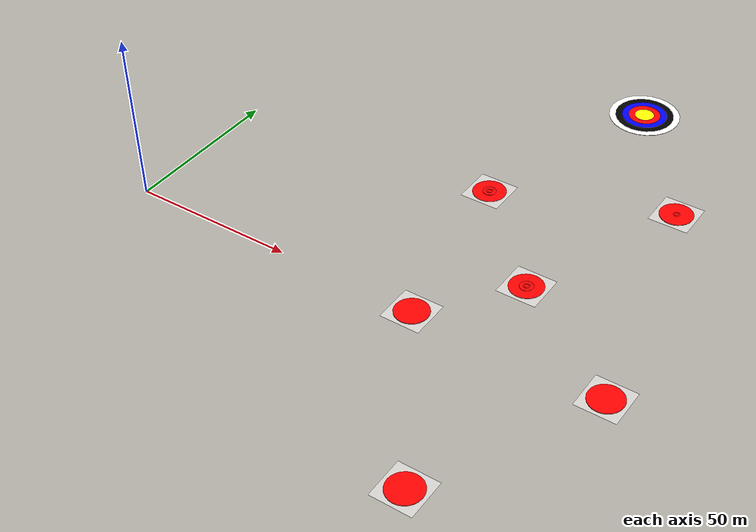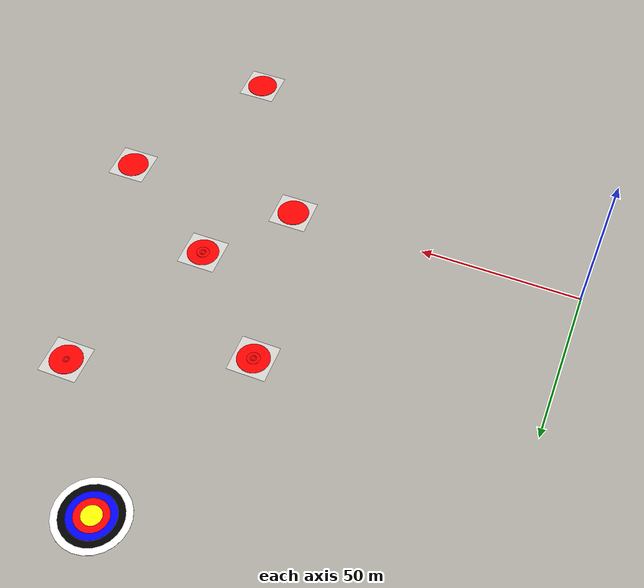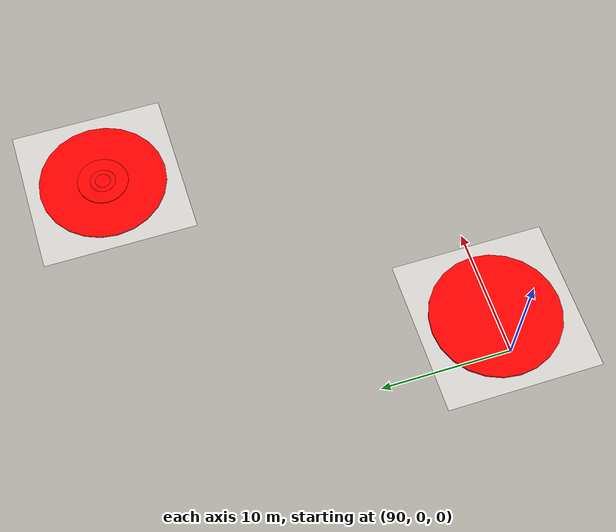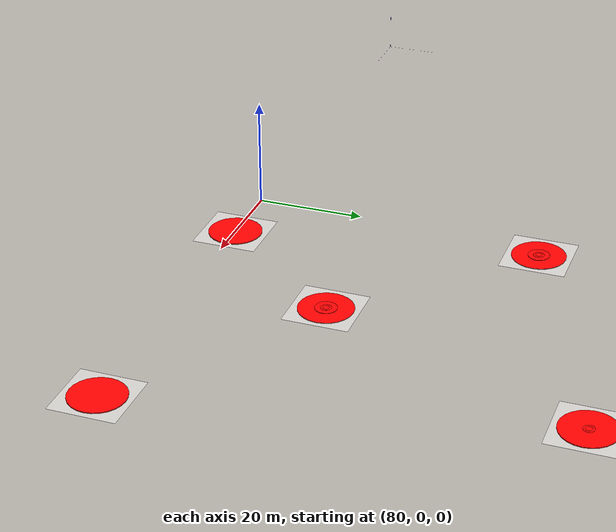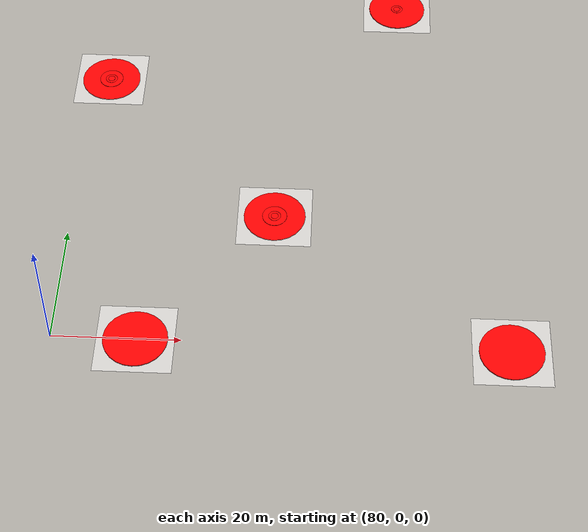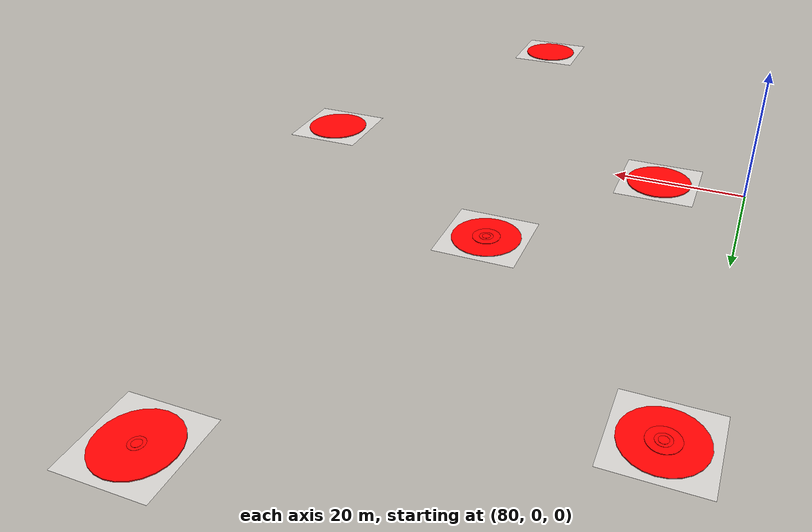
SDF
<sdf version="1.10">
 <world name="iris_runway">
  <physics name="1ms" type="ignore">
   <max_step_size>0.001</max_step_size>
   <real_time_factor>1</real_time_factor>
   <real_time_update_rate>1000</real_time_update_rate>
  </physics>
  <plugin name="gz::sim::systems::Physics" filename="gz-sim-physics-system"/>
  <plugin name="gz::sim::systems::Sensors" filename="gz-sim-sensors-system">
   <render_engine>ogre2</render_engine>
  </plugin>
  <plugin name="gz::sim::systems::UserCommands" filename="gz-sim-user-commands-system"/>
  <plugin name="gz::sim::systems::SceneBroadcaster" filename="gz-sim-scene-broadcaster-system"/>
  <plugin name="gz::sim::systems::Imu" filename="gz-sim-imu-system"/>
  <plugin name="gz::sim::systems::NavSat" filename="gz-sim-navsat-system"/>
  <scene>
   <ambient>1 1 1 1</ambient>
   <background>0.800000012 0.800000012 0.800000012 1</background>
   <shadows>true</shadows>
  </scene>
  <spherical_coordinates>
   <latitude_deg>-35.363261999999999</latitude_deg>
   <longitude_deg>149.16523699999999</longitude_deg>
   <elevation>584</elevation>
   <heading_deg>0</heading_deg>
   <surface_model>EARTH_WGS84</surface_model>
  </spherical_coordinates>
  <gravity>0 0 -9.8000000000000007</gravity>
  <magnetic_field>5.5644999999999998e-06 2.2875799999999999e-05 -4.2388400000000002e-05</magnetic_field>
  <atmosphere type="adiabatic"/>
  <model name="helipad">
   <link name="background_link">
    <collision name="background_collision">
     <geometry><cylinder><radius>4</radius><length>0.11</length></cylinder></geometry>
    </collision>
    <visual name="background_visual_H1">
     <geometry><cylinder><radius>3.7</radius><length>0.1</length></cylinder></geometry>
     <material>
      <ambient>1 0 0 1</ambient>
      <diffuse>1 0 0 1</diffuse>
      <specular>0 0 0 1</specular>
      <emissive>0 0 0 0</emissive>
     </material>
     <pose>93 0 0 0 0 0</pose>
    </visual>
   </link>
   <link name="h_letter">
    <collision name="h_letter_collision">
     <geometry><cylinder><radius>3</radius><length>0.12</length></cylinder></geometry>
    </collision>
    <visual name="h_letter_visual_11">
     <geometry><cylinder><radius>3</radius><length>0.12</length></cylinder></geometry>
     <material>
      <ambient>1 0 0 1</ambient>
      <diffuse>1 0 0 1</diffuse>
      <specular>0 0 0 1</specular>
      <emissive>0 0 0 0</emissive>
     </material>
     <pose>93 0 0 0 0 0</pose>
    </visual>
    <visual name="h_letter_visual_12">
     <geometry><cylinder><radius>2</radius><length>0.15</length></cylinder></geometry>
     <material>
      <ambient>1 0 0 1</ambient>
      <diffuse>1 0 0 1</diffuse>
      <specular>0 0 0 1</specular>
      <emissive>0 0 0 0</emissive>
     </material>
     <pose>93 0 0 0 0 0</pose>
    </visual>
    <visual name="h_letter_visual_13">
     <geometry><cylinder><radius>1</radius><length>0.15</length></cylinder></geometry>
     <material>
      <ambient>1 0 0 1</ambient>
      <diffuse>1 0 0 1</diffuse>
      <specular>0 0 0 1</specular>
      <emissive>0 0 0 0</emissive>
     </material>
     <pose>93 0 0.05 0 0 0</pose>
    </visual>
    <visual name="h_letter_visual_14">
     <geometry><cylinder><radius>5</radius><length>0.17</length></cylinder></geometry>
     <material>
      <ambient>1 0 0 1</ambient>
      <diffuse>1 0 0 1</diffuse>
      <specular>0 0 0 1</specular>
      <emissive>0 0 0 0</emissive>
     </material>
     <pose>93 0 0.05 0 0 0</pose>
    </visual>
    <visual name="white_box1">
     <geometry><box><size>12 12 0.001</size></box></geometry>
     <material>
      <ambient>1 1 1 0.5</ambient>
      <diffuse>1 1 1 0.5</diffuse>
      <specular>1 1 1 0.5</specular>
      <emissive>1 1 1 0</emissive>
     </material>
     <pose>93 0 0.001 0 0 0</pose>
    </visual>
    <visual name="h_letter_visual_69">
     <geometry><cylinder><radius>3.7</radius><length>0.1</length></cylinder></geometry>
     <material>
      <ambient>1 0 0 1</ambient>
      <diffuse>1 0 0 1</diffuse>
      <specular>0 0 0 0</specular>
      <emissive>0 0 0 0</emissive>
     </material>
     <pose>113 25 0 0 0 0</pose>
    </visual>
    <visual name="h_letter_visual_79">
     <geometry><cylinder><radius>3.7</radius><length>0.1</length></cylinder></geometry>
     <material>
      <ambient>1 0 0 1</ambient>
      <diffuse>1 0 0 1</diffuse>
      <specular>0 0 0 1</specular>
      <emissive>0 0 0 0</emissive>
     </material>
     <pose>83 55 0 0 0 0</pose>
    </visual>
    <visual name="h_letter_visual_76">
     <geometry><cylinder><radius>3.7</radius><length>0.1</length></cylinder></geometry>
     <material>
      <ambient>1 0 0 1</ambient>
      <diffuse>1 0 0 1</diffuse>
      <specular>0 0 0 1</specular>
      <emissive>0 0 0 0</emissive>
     </material>
     <pose>133 75 0 0 0 0</pose>
    </visual>
    <visual name="h_letter_visual_78">
     <geometry><cylinder><radius>5</radius><length>0.12</length></cylinder></geometry>
     <material>
      <ambient>1 0 0 1</ambient>
      <diffuse>1 0 0 1</diffuse>
      <specular>0 0 0 1</specular>
      <emissive>0 0 0 0</emissive>
     </material>
     <pose>113 25 0 0 0 0</pose>
    </visual>
    <visual name="white_box2">
     <geometry><box><size>12 12 0.001</size></box></geometry>
     <material>
      <ambient>1 1 1 0.5</ambient>
      <diffuse>1 1 1 0.5</diffuse>
      <specular>1 1 1 0.5</specular>
      <emissive>1 1 1 0</emissive>
     </material>
     <pose>113 25 0.001 0 0 0</pose>
    </visual>
    <visual name="h_letter_visual_98">
     <geometry><cylinder><radius>5</radius><length>0.12</length></cylinder></geometry>
     <material>
      <ambient>1 0 0 1</ambient>
      <diffuse>1 0 0 1</diffuse>
      <specular>0 0 0 1</specular>
      <emissive>0 0 0 0</emissive>
     </material>
     <pose>83 55 0 0 0 0</pose>
    </visual>
    <visual name="white_box3">
     <geometry><box><size>12 12 0.001</size></box></geometry>
     <material>
      <ambient>1 1 1 0.5</ambient>
      <diffuse>1 1 1 0.5</diffuse>
      <specular>1 1 1 0.5</specular>
      <emissive>1 1 1 0</emissive>
     </material>
     <pose>83 55 0.001 0 0 0</pose>
    </visual>
    <visual name="h_letter_visual_68">
     <geometry><cylinder><radius>3</radius><length>0.12</length></cylinder></geometry>
     <material>
      <ambient>1 0 0 1</ambient>
      <diffuse>1 0 0 1</diffuse>
      <specular>0 0 0 1</specular>
      <emissive>0 0 0 0</emissive>
     </material>
     <pose>133 75 0 0 0 0</pose>
    </visual>
    <visual name="h_letter_visual_45">
     <geometry><cylinder><radius>2</radius><length>0.15</length></cylinder></geometry>
     <material>
      <ambient>1 0 0 1</ambient>
      <diffuse>1 0 0 1</diffuse>
      <specular>0 0 0 1</specular>
      <emissive>0 0 0 0</emissive>
     </material>
     <pose>113 25 0.05 0 0 0</pose>
    </visual>
    <visual name="h_letter_visual_46">
     <geometry><cylinder><radius>2</radius><length>0.15</length></cylinder></geometry>
     <material>
      <ambient>1 0 0 1</ambient>
      <diffuse>1 0 0 1</diffuse>
      <specular>0 0 0 1</specular>
      <emissive>0 0 0 0</emissive>
     </material>
     <pose>83 55 0.05 0 0 0</pose>
    </visual>
    <visual name="h_letter_visual_35">
     <geometry><cylinder><radius>5</radius><length>0.15</length></cylinder></geometry>
     <material>
      <ambient>1 0 0 1</ambient>
      <diffuse>1 0 0 1</diffuse>
      <specular>0 0 0 1</specular>
      <emissive>0 0 0 0</emissive>
     </material>
     <pose>133 75 0.05 0 0 0</pose>
    </visual>
    <visual name="white_box4">
     <geometry><box><size>12 12 0.001</size></box></geometry>
     <material>
      <ambient>1 1 1 0.5</ambient>
      <diffuse>1 1 1 0.5</diffuse>
      <specular>1 1 1 0.5</specular>
      <emissive>1 1 1 0</emissive>
     </material>
     <pose>133 75 0.001 0 0 0</pose>
    </visual>
    <visual name="h_letter_visual_56">
     <geometry><cylinder><radius>1</radius><length>0.17</length></cylinder></geometry>
     <material>
      <ambient>1 0 0 1</ambient>
      <diffuse>1 0 0 1</diffuse>
      <specular>0 0 0 1</specular>
      <emissive>0 0 0 0</emissive>
     </material>
     <pose>113 25 0.05 0 0 0</pose>
    </visual>
    <visual name="h_letter_visual_16">
     <geometry><cylinder><radius>1</radius><length>0.17</length></cylinder></geometry>
     <material>
      <ambient>1 0 0 1</ambient>
      <diffuse>1 0 0 1</diffuse>
      <specular>0 0 0 1</specular>
      <emissive>0 0 0 0</emissive>
     </material>
     <pose>83 55 0.05 0 0 0</pose>
    </visual>
    <visual name="h_letter_visual_66">
     <geometry><cylinder><radius>1</radius><length>0.17</length></cylinder></geometry>
     <material>
      <ambient>1 0 0 1</ambient>
      <diffuse>1 0 0 1</diffuse>
      <specular>0 0 0 1</specular>
      <emissive>0 0 0 0</emissive>
     </material>
     <pose>133 75 0.05 0 0 0</pose>
    </visual>
    <visual name="h_letter_visual_23">
     <geometry><cylinder><radius>0.6</radius><length>0.19</length></cylinder></geometry>
     <material>
      <ambient>1 0 0 1</ambient>
      <diffuse>1 0 0 1</diffuse>
      <specular>0 0 0 1</specular>
      <emissive>0 0 0 0</emissive>
     </material>
     <pose>113 25 0.05 0 0 0</pose>
    </visual>
    <visual name="h_letter_visual_19">
     <geometry><cylinder><radius>0.6</radius><length>0.19</length></cylinder></geometry>
     <material>
      <ambient>1 0 0 1</ambient>
      <diffuse>1 0 0 1</diffuse>
      <specular>0 0 0 1</specular>
      <emissive>0 0 0 0</emissive>
     </material>
     <pose>133 75 0.05 0 0 0</pose>
    </visual>
    <visual name="h_letter_visual_73">
     <geometry><cylinder><radius>0.6</radius><length>0.19</length></cylinder></geometry>
     <material>
      <ambient>1 0 0 1</ambient>
      <diffuse>1 0 0 1</diffuse>
      <specular>0 0 0 1</specular>
      <emissive>0 0 0 0</emissive>
     </material>
     <pose>83 55 0.05 0 0 0</pose>
    </visual>
    <visual name="h_letter_visual_113">
     <geometry><cylinder><radius>3</radius><length>0.19</length></cylinder></geometry>
     <material>
      <ambient>1 1 0 1</ambient>
      <diffuse>1 1 0 1</diffuse>
      <specular>1 1 0 1</specular>
      <emissive>1 1 0 0</emissive>
     </material>
     <pose>103 115 0.05 0 0 0</pose>
    </visual>
    <visual name="h_letter_visual_146">
     <geometry><cylinder><radius>5</radius><length>0.17</length></cylinder></geometry>
     <material>
      <ambient>1 0 0 1</ambient>
      <diffuse>1 0 0 1</diffuse>
      <specular>1 0 0 1</specular>
      <emissive>1 0 0 0</emissive>
     </material>
     <pose>103 115 0.05 0 0 0</pose>
    </visual>
    <visual name="h_letter_visual_65">
     <geometry><cylinder><radius>7</radius><length>0.15</length></cylinder></geometry>
     <material>
      <ambient>0 0 1 1</ambient>
      <diffuse>0 0 1 1</diffuse>
      <specular>0 0 1 1</specular>
      <emissive>0 0 1 0</emissive>
     </material>
     <pose>103 115 0.05 0 0 0</pose>
    </visual>
    <visual name="h_letter_visual_18">
     <geometry><cylinder><radius>9</radius><length>0.12</length></cylinder></geometry>
     <material>
      <ambient>0 0 0 1</ambient>
      <diffuse>0 0 0 1</diffuse>
      <specular>0 0 0 1</specular>
      <emissive>0 0 0 0</emissive>
     </material>
     <pose>103 115 0 0 0 0</pose>
    </visual>
    <visual name="h_letter_visual_71">
     <geometry><cylinder><radius>11</radius><length>0.1</length></cylinder></geometry>
     <material>
      <ambient>1 1 1 1</ambient>
      <diffuse>1 1 1 1</diffuse>
      <specular>0 0 0 1</specular>
      <emissive>0 0 0 0</emissive>
     </material>
     <pose>103 115 0 0 0 0</pose>
    </visual>
    <visual name="background_visual_H5">
     <geometry><cylinder><radius>3.7</radius><length>0.1</length></cylinder></geometry>
     <material>
      <ambient>1 0 0 1</ambient>
      <diffuse>1 0 0 1</diffuse>
      <specular>0 0 0 1</specular>
      <emissive>0 0 0 0</emissive>
     </material>
     <pose>150 0 0 0 0 0</pose>
    </visual>
    <visual name="h_letter_visual_51">
     <geometry><cylinder><radius>3</radius><length>0.12</length></cylinder></geometry>
     <material>
      <ambient>1 0 0 1</ambient>
      <diffuse>1 0 0 1</diffuse>
      <specular>0 0 0 1</specular>
      <emissive>0 0 0 0</emissive>
     </material>
     <pose>150 0 0 0 0 0</pose>
    </visual>
    <visual name="h_letter_visual_52">
     <geometry><cylinder><radius>2</radius><length>0.15</length></cylinder></geometry>
     <material>
      <ambient>1 0 0 1</ambient>
      <diffuse>1 0 0 1</diffuse>
      <specular>0 0 0 1</specular>
      <emissive>0 0 0 0</emissive>
     </material>
     <pose>150 0 0 0 0 0</pose>
    </visual>
    <visual name="h_letter_visual_53">
     <geometry><cylinder><radius>1</radius><length>0.15</length></cylinder></geometry>
     <material>
      <ambient>1 0 0 1</ambient>
      <diffuse>1 0 0 1</diffuse>
      <specular>0 0 0 1</specular>
      <emissive>0 0 0 0</emissive>
     </material>
     <pose>150 0 0.05 0 0 0</pose>
    </visual>
    <visual name="h_letter_visual_54">
     <geometry><cylinder><radius>5</radius><length>0.17</length></cylinder></geometry>
     <material>
      <ambient>1 0 0 1</ambient>
      <diffuse>1 0 0 1</diffuse>
      <specular>0 0 0 1</specular>
      <emissive>0 0 0 0</emissive>
     </material>
     <pose>150 0 0.05 0 0 0</pose>
    </visual>
    <visual name="white_box6">
     <geometry><box><size>12 12 0.001</size></box></geometry>
     <material>
      <ambient>1 1 1 0.5</ambient>
      <diffuse>1 1 1 0.5</diffuse>
      <specular>1 1 1 0.5</specular>
      <emissive>1 1 1 0</emissive>
     </material>
     <pose>150 0 0.001 0 0 0</pose>
    </visual>
    <visual name="background_visual_H6">
     <geometry><cylinder><radius>3.7</radius><length>0.1</length></cylinder></geometry>
     <material>
      <ambient>1 0 0 1</ambient>
      <diffuse>1 0 0 1</diffuse>
      <specular>0 0 0 1</specular>
      <emissive>0 0 0 0</emissive>
     </material>
     <pose>125 -50 0 0 0 0</pose>
    </visual>
    <visual name="h_letter_visual_61">
     <geometry><cylinder><length>0.12</length></cylinder></geometry>
     <material>
      <ambient>1 0 0 1</ambient>
      <diffuse>1 0 0 1</diffuse>
      <specular>0 0 0 1</specular>
      <emissive>0 0 0 0</emissive>
     </material>
     <pose>125 -50 0 0 0 0</pose>
    </visual>
    <visual name="h_letter_visual_62">
     <geometry><cylinder><radius>2</radius><length>0.15</length></cylinder></geometry>
     <material>
      <ambient>1 0 0 1</ambient>
      <diffuse>1 0 0 1</diffuse>
      <specular>0 0 0 1</specular>
      <emissive>0 0 0 0</emissive>
     </material>
     <pose>125 -50 0 0 0 0</pose>
    </visual>
    <visual name="h_letter_visual_63">
     <geometry><cylinder><radius>1</radius><length>0.15</length></cylinder></geometry>
     <material>
      <ambient>1 0 0 1</ambient>
      <diffuse>1 0 0 1</diffuse>
      <specular>0 0 0 1</specular>
      <emissive>0 0 0 0</emissive>
     </material>
     <pose>125 -50 0.05 0 0 0</pose>
    </visual>
    <visual name="h_letter_visual_64">
     <geometry><cylinder><radius>5</radius><length>0.17</length></cylinder></geometry>
     <material>
      <ambient>1 0 0 1</ambient>
      <diffuse>1 0 0 1</diffuse>
      <specular>0 0 0 1</specular>
      <emissive>0 0 0 0</emissive>
     </material>
     <pose>125 -50 0.05 0 0 0</pose>
    </visual>
    <visual name="white_box7">
     <geometry><box><size>12 12 0.001</size></box></geometry>
     <material>
      <ambient>1 1 1 0.5</ambient>
      <diffuse>1 1 1 0.5</diffuse>
      <specular>1 1 1 0.5</specular>
      <emissive>1 1 1 0</emissive>
     </material>
     <pose>125 -50 0.001 0 0 0</pose>
    </visual>
   </link>
  </model>
  <model name="axes">
   <static>true</static>
   <link name="link">
    <visual name="r">
     <cast_shadows>false</cast_shadows>
     <pose>5 0 0.10000000000000001 0 0 0</pose>
     <geometry><box><size>10 0.01 0.01</size></box></geometry>
     <material>
      <ambient>1 0 0 0.800000012</ambient>
      <diffuse>1 0 0 0.800000012</diffuse>
      <emissive>1 0 0 0.800000012</emissive>
      <specular>0.5 0.5 0.5 0.800000012</specular>
     </material>
    </visual>
    <visual name="g">
     <cast_shadows>false</cast_shadows>
     <pose>0 5 0.10000000000000001 0 0 0</pose>
     <geometry><box><size>0.01 10 0.01</size></box></geometry>
     <material>
      <ambient>0 1 0 0.800000012</ambient>
      <diffuse>0 1 0 0.800000012</diffuse>
      <emissive>0 1 0 0.800000012</emissive>
      <specular>0.5 0.5 0.5 0.800000012</specular>
     </material>
    </visual>
    <visual name="b">
     <cast_shadows>false</cast_shadows>
     <pose>0 0 5.0999999999999996 0 0 0</pose>
     <geometry><box><size>0.01 0.01 10</size></box></geometry>
     <material>
      <ambient>0 0 1 0.800000012</ambient>
      <diffuse>0 0 1 0.800000012</diffuse>
      <emissive>0 0 1 0.800000012</emissive>
      <specular>0.5 0.5 0.5 0.800000012</specular>
     </material>
    </visual>
    <sensor name="navsat_sensor" type="navsat"><always_on>true</always_on><update_rate>1</update_rate></sensor>
    <inertial>
     <mass>1</mass>
     <inertia><ixx>1</ixx><ixy>0</ixy><ixz>0</ixz><iyy>1</iyy><iyz>0</iyz><izz>1</izz></inertia>
    </inertial>
   </link>
  </model>
  <light name="sun" type="directional">
   <pose>0 0 10 0 0 0</pose>
   <intensity>1</intensity>
   <direction>-0.5 0.10000000000000001 -0.90000000000000002</direction>
   <diffuse>0.800000012 0.800000012 0.800000012 1</diffuse>
   <specular>0.800000012 0.800000012 0.800000012 1</specular>
   <attenuation>
    <range>1000</range>
    <linear>0.01</linear>
    <constant>0.90000000000000002</constant>
    <quadratic>0.001</quadratic>
   </attenuation>
   <spot><inner_angle>0</inner_angle><outer_angle>0</outer_angle><falloff>0</falloff></spot>
  </light>
 </world>
</sdf>
